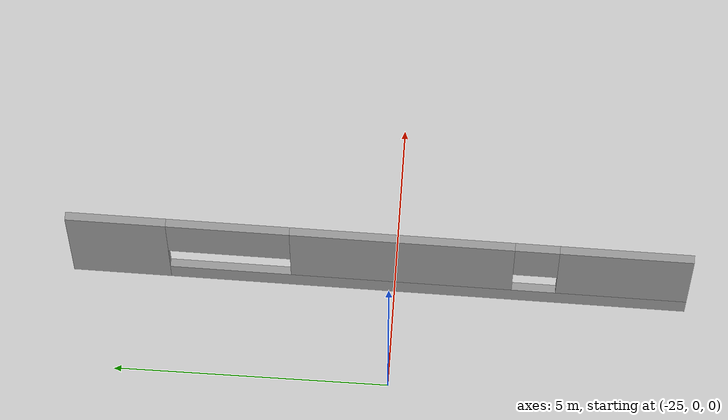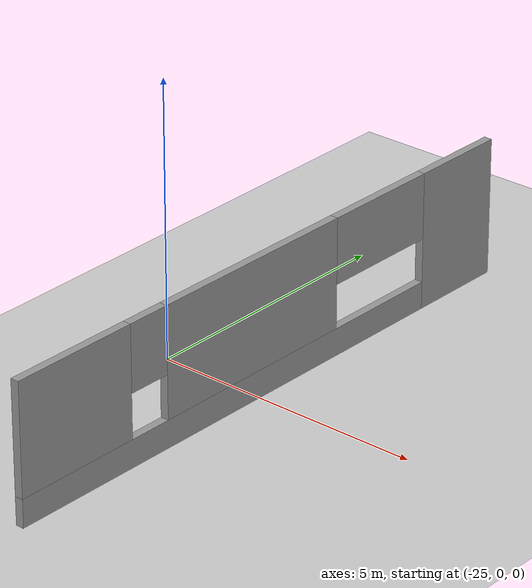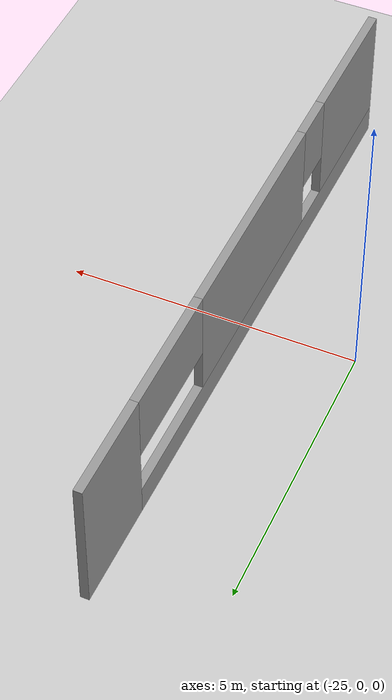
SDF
<sdf version="1.7">
 <world name="default">
  <model name="ground_plane">
   <static>1</static>
   <link name="link">
    <collision name="collision">
     <geometry><plane><normal>0 0 1</normal><size>100 100</size></plane></geometry>
     <surface><friction><ode><mu>100</mu><mu2>50</mu2></ode></friction></surface>
    </collision>
    <visual name="visual">
     <cast_shadows>0</cast_shadows>
     <geometry><plane><normal>0 0 1</normal><size>100 100</size></plane></geometry>
     <material>
      <script><uri>file://media/materials/scripts/gazebo.material</uri><name>Gazebo/Grey</name></script>
     </material>
    </visual>
   </link>
  </model>
  <model name="Building">
   <link name="Wall_3">
    <pose>-11.4453 0.000125 0 0 0 -1.57809</pose>
    <visual name="Wall_3_Visual_0">
     <pose>-4.72152 0 1.25 0 -0 0</pose>
     <geometry><box><size>1.79901 0.15 2.5</size></box></geometry>
     <material>
      <script><uri>file://media/materials/scripts/gazebo.material</uri><name>Gazebo/Grey</name></script>
      <ambient>1 1 1 1</ambient>
      <shader type="pixel"/>
      <diffuse>0.7 0.7 0.7 1</diffuse>
      <specular>0.01 0.01 0.01 1</specular>
      <emissive>0 0 0 1</emissive>
     </material>
     <meta><layer>0</layer></meta>
    </visual>
    <visual name="Wall_3_Visual_2">
     <pose>0.411122 0 1.5 0 -0 0</pose>
     <geometry><box><size>4.03505 0.15 2</size></box></geometry>
     <material>
      <script><uri>file://media/materials/scripts/gazebo.material</uri><name>Gazebo/Grey</name></script>
      <ambient>1 1 1 1</ambient>
      <shader type="pixel"/>
      <diffuse>0.7 0.7 0.7 1</diffuse>
      <specular>0.01 0.01 0.01 1</specular>
      <emissive>0 0 0 1</emissive>
     </material>
     <meta><layer>0</layer></meta>
    </visual>
    <visual name="Wall_3_Visual_1">
     <pose>0.899504 0 0.25 0 -0 0</pose>
     <geometry><box><size>9.44304 0.15 0.5</size></box></geometry>
     <material>
      <script><uri>file://media/materials/scripts/gazebo.material</uri><name>Gazebo/Grey</name></script>
      <ambient>1 1 1 1</ambient>
      <shader type="pixel"/>
      <diffuse>0.7 0.7 0.7 1</diffuse>
      <specular>0.01 0.01 0.01 1</specular>
      <emissive>0 0 0 1</emissive>
     </material>
     <meta><layer>0</layer></meta>
    </visual>
    <visual name="Wall_3_Visual_3">
     <pose>4.42484 0 1.5 0 -0 0</pose>
     <geometry><box><size>2.39238 0.15 2</size></box></geometry>
     <material>
      <script><uri>file://media/materials/scripts/gazebo.material</uri><name>Gazebo/Grey</name></script>
      <ambient>1 1 1 1</ambient>
      <shader type="pixel"/>
      <diffuse>0.7 0.7 0.7 1</diffuse>
      <specular>0.01 0.01 0.01 1</specular>
      <emissive>0 0 0 1</emissive>
     </material>
     <meta><layer>0</layer></meta>
    </visual>
    <visual name="Wall_3_Visual_4">
     <pose>-2.71421 0 1.9 0 -0 0</pose>
     <geometry><box><size>2.21561 0.15 1.2</size></box></geometry>
     <material>
      <script><uri>file://media/materials/scripts/gazebo.material</uri><name>Gazebo/Grey</name></script>
      <ambient>1 1 1 1</ambient>
      <shader type="pixel"/>
      <diffuse>0.7 0.7 0.7 1</diffuse>
      <specular>0.01 0.01 0.01 1</specular>
      <emissive>0 0 0 1</emissive>
     </material>
     <meta><layer>0</layer></meta>
    </visual>
    <visual name="Wall_3_Visual_5">
     <pose>2.82865 0 1.9 0 -0 0</pose>
     <geometry><box><size>0.8 0.15 1.2</size></box></geometry>
     <material>
      <script><uri>file://media/materials/scripts/gazebo.material</uri><name>Gazebo/Grey</name></script>
      <ambient>1 1 1 1</ambient>
      <shader type="pixel"/>
      <diffuse>0.7 0.7 0.7 1</diffuse>
      <specular>0.01 0.01 0.01 1</specular>
      <emissive>0 0 0 1</emissive>
     </material>
     <meta><layer>0</layer></meta>
    </visual>
    <collision name="Wall_3_Collision_0">
     <pose>-4.72152 0 1.25 0 -0 0</pose>
     <geometry><box><size>1.79901 0.15 2.5</size></box></geometry>
     <surface>
      <friction>
       <ode><mu>1</mu><mu2>1</mu2><fdir1>0 0 0</fdir1><slip1>0</slip1><slip2>0</slip2></ode>
       <torsional>
        <coefficient>1</coefficient>
        <patch_radius>0</patch_radius>
        <surface_radius>0</surface_radius>
        <use_patch_radius>1</use_patch_radius>
        <ode><slip>0</slip></ode>
       </torsional>
      </friction>
      <bounce><restitution_coefficient>0</restitution_coefficient><threshold>1e+06</threshold></bounce>
      <contact>
       <collide_without_contact>0</collide_without_contact>
       <collide_without_contact_bitmask>1</collide_without_contact_bitmask>
       <collide_bitmask>1</collide_bitmask>
       <ode>
        <soft_cfm>0</soft_cfm>
        <soft_erp>0.2</soft_erp>
        <kp>1e+13</kp>
        <kd>1</kd>
        <max_vel>0.01</max_vel>
        <min_depth>0</min_depth>
       </ode>
       <bullet>
        <split_impulse>1</split_impulse>
        <split_impulse_penetration_threshold>-0.01</split_impulse_penetration_threshold>
        <soft_cfm>0</soft_cfm>
        <soft_erp>0.2</soft_erp>
        <kp>1e+13</kp>
        <kd>1</kd>
       </bullet>
      </contact>
     </surface>
    </collision>
    <collision name="Wall_3_Collision_5">
     <pose>2.82865 0 1.9 0 -0 0</pose>
     <geometry><box><size>0.8 0.15 1.2</size></box></geometry>
     <surface>
      <friction>
       <ode><mu>1</mu><mu2>1</mu2><fdir1>0 0 0</fdir1><slip1>0</slip1><slip2>0</slip2></ode>
       <torsional>
        <coefficient>1</coefficient>
        <patch_radius>0</patch_radius>
        <surface_radius>0</surface_radius>
        <use_patch_radius>1</use_patch_radius>
        <ode><slip>0</slip></ode>
       </torsional>
      </friction>
      <bounce><restitution_coefficient>0</restitution_coefficient><threshold>1e+06</threshold></bounce>
      <contact>
       <collide_without_contact>0</collide_without_contact>
       <collide_without_contact_bitmask>1</collide_without_contact_bitmask>
       <collide_bitmask>1</collide_bitmask>
       <ode>
        <soft_cfm>0</soft_cfm>
        <soft_erp>0.2</soft_erp>
        <kp>1e+13</kp>
        <kd>1</kd>
        <max_vel>0.01</max_vel>
        <min_depth>0</min_depth>
       </ode>
       <bullet>
        <split_impulse>1</split_impulse>
        <split_impulse_penetration_threshold>-0.01</split_impulse_penetration_threshold>
        <soft_cfm>0</soft_cfm>
        <soft_erp>0.2</soft_erp>
        <kp>1e+13</kp>
        <kd>1</kd>
       </bullet>
      </contact>
     </surface>
    </collision>
    <collision name="Wall_3_Collision_1">
     <pose>0.899504 0 0.25 0 -0 0</pose>
     <geometry><box><size>9.44304 0.15 0.5</size></box></geometry>
     <surface>
      <friction>
       <ode><mu>1</mu><mu2>1</mu2><fdir1>0 0 0</fdir1><slip1>0</slip1><slip2>0</slip2></ode>
       <torsional>
        <coefficient>1</coefficient>
        <patch_radius>0</patch_radius>
        <surface_radius>0</surface_radius>
        <use_patch_radius>1</use_patch_radius>
        <ode><slip>0</slip></ode>
       </torsional>
      </friction>
      <bounce><restitution_coefficient>0</restitution_coefficient><threshold>1e+06</threshold></bounce>
      <contact>
       <collide_without_contact>0</collide_without_contact>
       <collide_without_contact_bitmask>1</collide_without_contact_bitmask>
       <collide_bitmask>1</collide_bitmask>
       <ode>
        <soft_cfm>0</soft_cfm>
        <soft_erp>0.2</soft_erp>
        <kp>1e+13</kp>
        <kd>1</kd>
        <max_vel>0.01</max_vel>
        <min_depth>0</min_depth>
       </ode>
       <bullet>
        <split_impulse>1</split_impulse>
        <split_impulse_penetration_threshold>-0.01</split_impulse_penetration_threshold>
        <soft_cfm>0</soft_cfm>
        <soft_erp>0.2</soft_erp>
        <kp>1e+13</kp>
        <kd>1</kd>
       </bullet>
      </contact>
     </surface>
    </collision>
    <collision name="Wall_3_Collision_2">
     <pose>0.411122 0 1.5 0 -0 0</pose>
     <geometry><box><size>4.03505 0.15 2</size></box></geometry>
     <surface>
      <friction>
       <ode><mu>1</mu><mu2>1</mu2><fdir1>0 0 0</fdir1><slip1>0</slip1><slip2>0</slip2></ode>
       <torsional>
        <coefficient>1</coefficient>
        <patch_radius>0</patch_radius>
        <surface_radius>0</surface_radius>
        <use_patch_radius>1</use_patch_radius>
        <ode><slip>0</slip></ode>
       </torsional>
      </friction>
      <bounce><restitution_coefficient>0</restitution_coefficient><threshold>1e+06</threshold></bounce>
      <contact>
       <collide_without_contact>0</collide_without_contact>
       <collide_without_contact_bitmask>1</collide_without_contact_bitmask>
       <collide_bitmask>1</collide_bitmask>
       <ode>
        <soft_cfm>0</soft_cfm>
        <soft_erp>0.2</soft_erp>
        <kp>1e+13</kp>
        <kd>1</kd>
        <max_vel>0.01</max_vel>
        <min_depth>0</min_depth>
       </ode>
       <bullet>
        <split_impulse>1</split_impulse>
        <split_impulse_penetration_threshold>-0.01</split_impulse_penetration_threshold>
        <soft_cfm>0</soft_cfm>
        <soft_erp>0.2</soft_erp>
        <kp>1e+13</kp>
        <kd>1</kd>
       </bullet>
      </contact>
     </surface>
    </collision>
    <collision name="Wall_3_Collision_3">
     <pose>4.42484 0 1.5 0 -0 0</pose>
     <geometry><box><size>2.39238 0.15 2</size></box></geometry>
     <surface>
      <friction>
       <ode><mu>1</mu><mu2>1</mu2><fdir1>0 0 0</fdir1><slip1>0</slip1><slip2>0</slip2></ode>
       <torsional>
        <coefficient>1</coefficient>
        <patch_radius>0</patch_radius>
        <surface_radius>0</surface_radius>
        <use_patch_radius>1</use_patch_radius>
        <ode><slip>0</slip></ode>
       </torsional>
      </friction>
      <bounce><restitution_coefficient>0</restitution_coefficient><threshold>1e+06</threshold></bounce>
      <contact>
       <collide_without_contact>0</collide_without_contact>
       <collide_without_contact_bitmask>1</collide_without_contact_bitmask>
       <collide_bitmask>1</collide_bitmask>
       <ode>
        <soft_cfm>0</soft_cfm>
        <soft_erp>0.2</soft_erp>
        <kp>1e+13</kp>
        <kd>1</kd>
        <max_vel>0.01</max_vel>
        <min_depth>0</min_depth>
       </ode>
       <bullet>
        <split_impulse>1</split_impulse>
        <split_impulse_penetration_threshold>-0.01</split_impulse_penetration_threshold>
        <soft_cfm>0</soft_cfm>
        <soft_erp>0.2</soft_erp>
        <kp>1e+13</kp>
        <kd>1</kd>
       </bullet>
      </contact>
     </surface>
    </collision>
    <collision name="Wall_3_Collision_4">
     <pose>-2.71421 0 1.9 0 -0 0</pose>
     <geometry><box><size>2.21561 0.15 1.2</size></box></geometry>
     <surface>
      <friction>
       <ode><mu>1</mu><mu2>1</mu2><fdir1>0 0 0</fdir1><slip1>0</slip1><slip2>0</slip2></ode>
       <torsional>
        <coefficient>1</coefficient>
        <patch_radius>0</patch_radius>
        <surface_radius>0</surface_radius>
        <use_patch_radius>1</use_patch_radius>
        <ode><slip>0</slip></ode>
       </torsional>
      </friction>
      <bounce><restitution_coefficient>0</restitution_coefficient><threshold>1e+06</threshold></bounce>
      <contact>
       <collide_without_contact>0</collide_without_contact>
       <collide_without_contact_bitmask>1</collide_without_contact_bitmask>
       <collide_bitmask>1</collide_bitmask>
       <ode>
        <soft_cfm>0</soft_cfm>
        <soft_erp>0.2</soft_erp>
        <kp>1e+13</kp>
        <kd>1</kd>
        <max_vel>0.01</max_vel>
        <min_depth>0</min_depth>
       </ode>
       <bullet>
        <split_impulse>1</split_impulse>
        <split_impulse_penetration_threshold>-0.01</split_impulse_penetration_threshold>
        <soft_cfm>0</soft_cfm>
        <soft_erp>0.2</soft_erp>
        <kp>1e+13</kp>
        <kd>1</kd>
       </bullet>
      </contact>
     </surface>
    </collision>
   </link>
   <static>1</static>
   <pose>-11.6425 0.2878 0 0 -0 0</pose>
  </model>
 </world>
</sdf>
